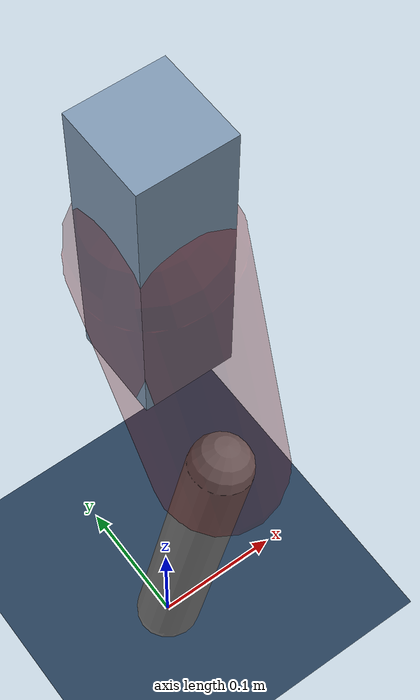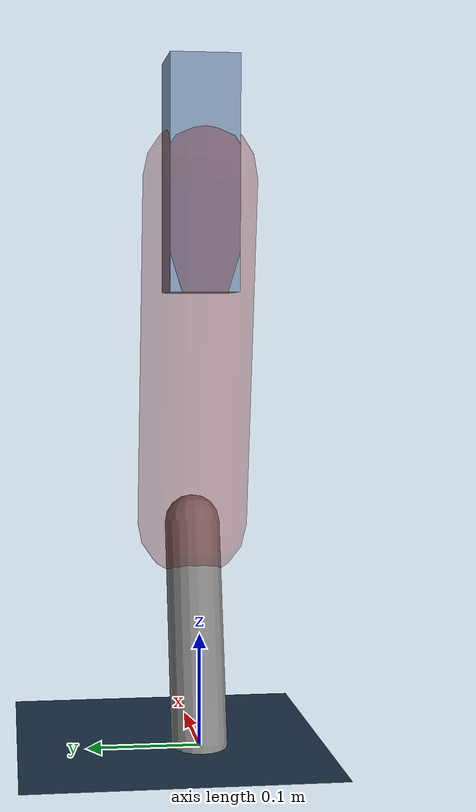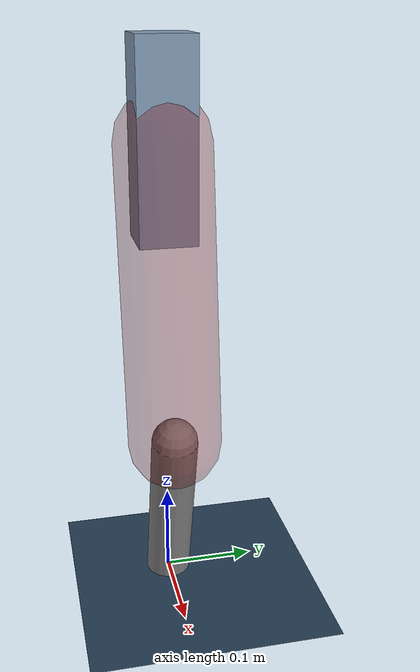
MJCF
<mujoco model="Hopper2D">
	<compiler inertiafromgeom="true" angle="radian" />
	<option timestep="0.001" integrator="implicit" cone="elliptic" solver="Newton" tolerance="1e-10" />

	<default>
		<geom contype="1" conaffinity="1" condim="3" friction="2 0.005 0.0001" solref="0.005 1" />
		<joint limited="true" damping="0.1" />
	</default>

	<asset>
		<texture name="skybox" type="skybox" builtin="gradient" rgb1=".4 .6 .8" rgb2="0 0 0" width="800" height="800" />
		<texture name="grid" type="2d" builtin="checker" rgb1=".1 .2 .3" rgb2=".2 .3 .4" width="300" height="300" mark="edge" markrgb=".2 .3 .4" />
		<material name="ground" texture="grid" texrepeat="1 1" texuniform="true" reflectance="0.1" />
		<material name="leg" rgba="0.5 0.6 0.7 1" />
	</asset>

	<worldbody>

		<geom name="floor" type="plane" size="5 5 0.25" material="ground" />

		<light directional="false" diffuse="0.8 0.8 0.8" specular="0.3 0.3 0.3" pos="0 0 2" dir="0 0 -1" />
		<light mode="targetbodycom" target="base" directional="false" diffuse="0.8 0.8 0.8" specular="0.3 0.3 0.3" pos="0 0 2" dir="0 0 -1" />

		<camera name="fixed" pos="0 -2 1" xyaxes="1 0 0 0 0 1" />
		<camera name="tracking" mode="trackcom" pos="0 -3 1" />

		<body name="root" pos="0 0 0.5009682051656223">
			<joint name="slide_x" type="slide" axis="1 0 0" range="-100 100" />
			<joint name="slide_z" type="slide" axis="0 0 1" range="0 10" />

			<body name="base" pos="0 0 0">
				<geom name="torso" type="box" size="0.03 0.03 0.1" mass="2.2359999999999998" material="leg" />

				<body name="link1" pos="0 0 0" euler="0 1.412925990445634 0">
					<joint type="hinge" axis="0 -1 0" pos="0 0 0" name="hinge1" limited="true" range="-3.14 3.14" stiffness="0" damping="0.1" />
					<geom name="thigh" type="capsule" fromto="0 0 0 0.31175121798072936 0 0" size="0.05" rgba="0.5 0 0 0.3" mass="1.0206282885479694" />

					<body name="link2" pos="0.31175121798072936 0 0" euler="0 0.40644598481911554 0">
						<joint type="hinge" axis="0 -1 0" pos="0 0 0" name="hinge2" limited="true" range="-3.14 3.14" stiffness="0" damping="0.1" />
						<geom name="shank" type="capsule" fromto="0 0 0 0.19921698718489295 0 0" size="0.025" mass="0.4002735897479143" />

					</body>
				</body>
			</body>
		</body>
	</worldbody>

	<actuator>
		<motor name="torque1" joint="hinge1" ctrlrange="-73.09690189646278 73.09690189646278" ctrllimited="true" gear="1" />
		<motor name="torque2" joint="hinge2" ctrlrange="-65.69481018892539 65.69481018892539" ctrllimited="true" gear="1" />
	</actuator>
</mujoco>
